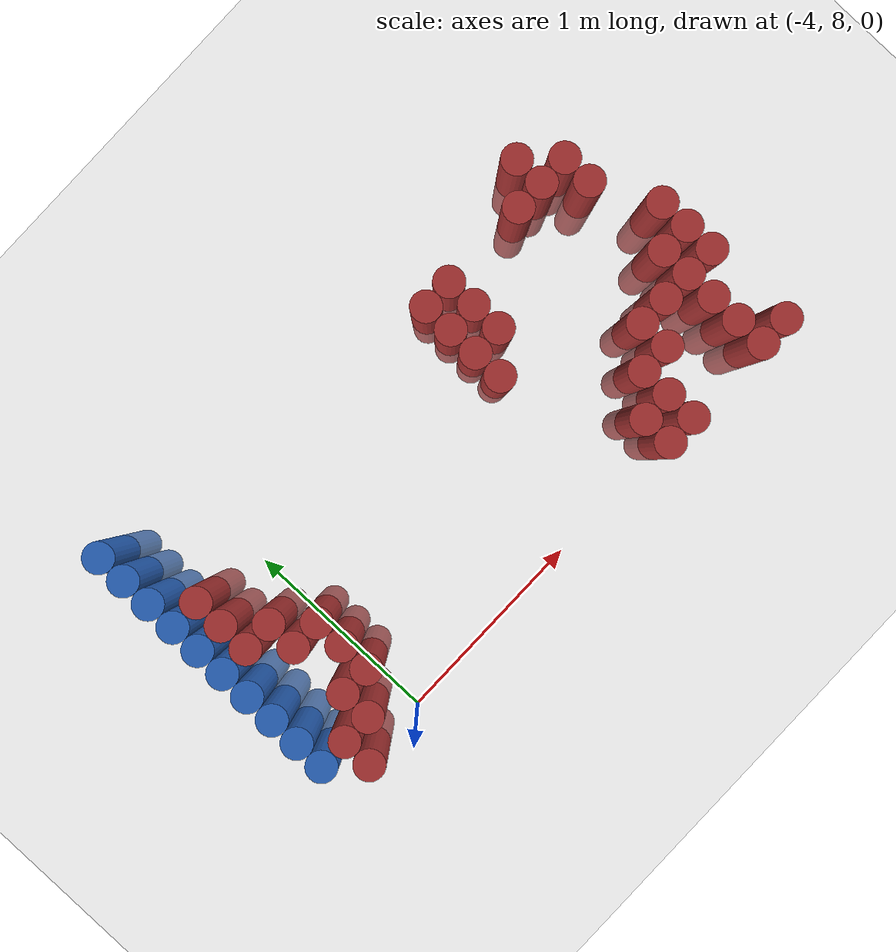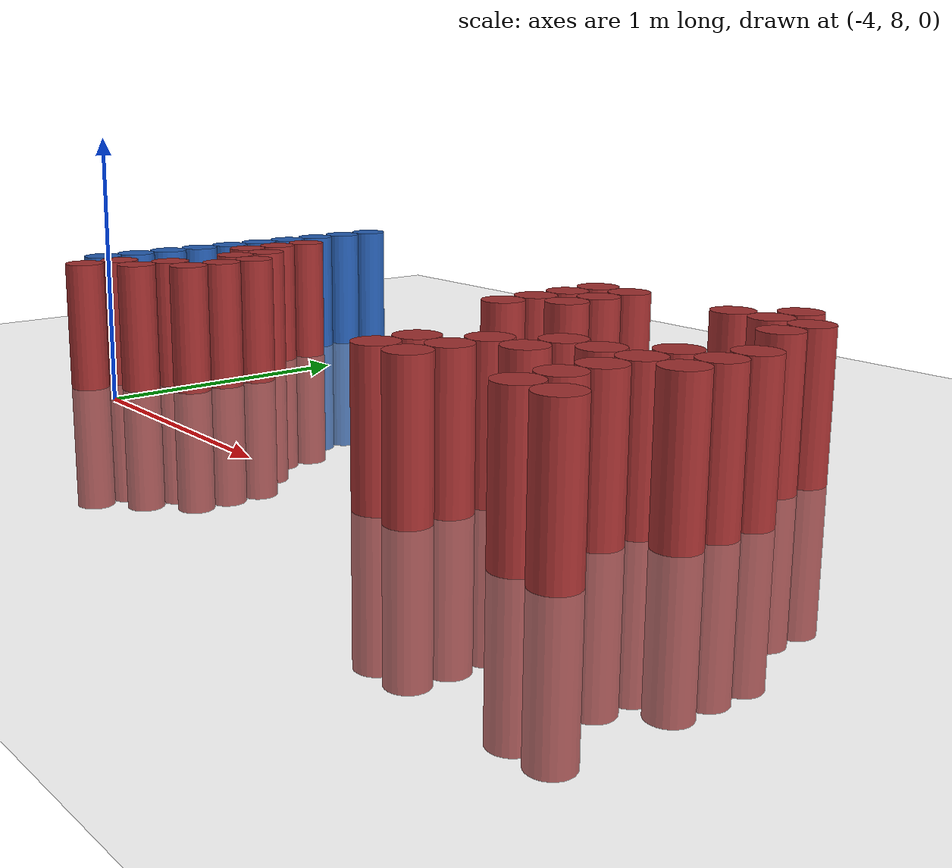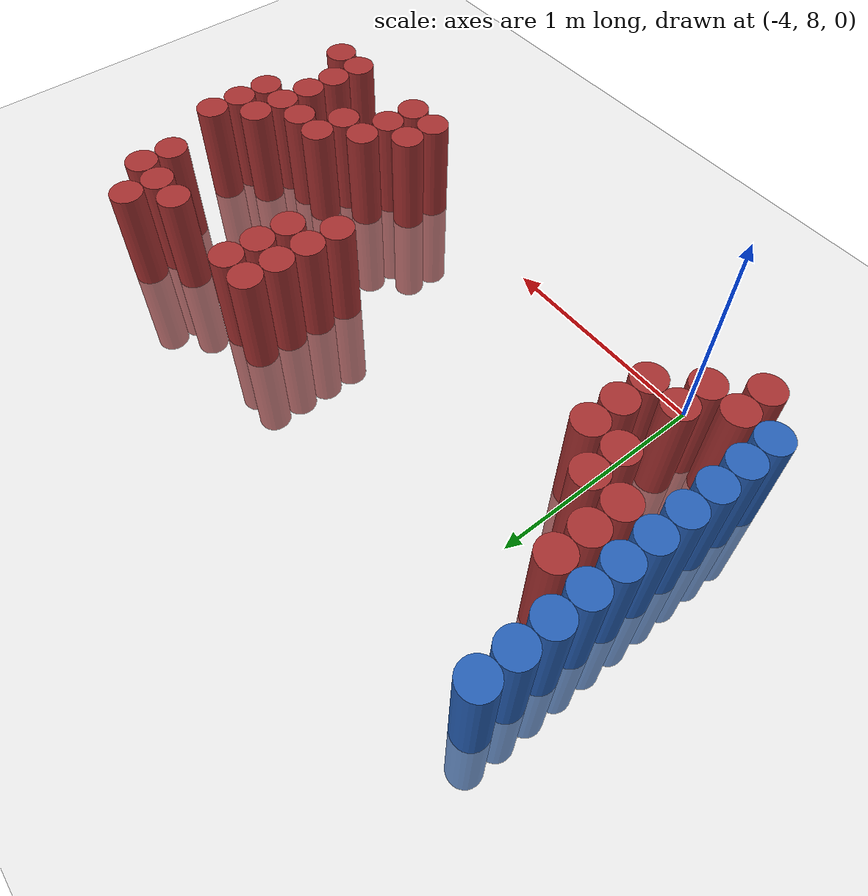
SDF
<sdf version="1.6">
 <world name="default">
  <model name="ground_plane">
   <static>1</static>
   <link name="link">
    <collision name="collision">
     <geometry><plane><normal>0 0 1</normal><size>100 100</size></plane></geometry>
     <surface><friction><ode><mu>100</mu><mu2>50</mu2></ode></friction></surface>
    </collision>
    <visual name="visual">
     <cast_shadows>0</cast_shadows>
     <geometry><plane><normal>0 0 1</normal><size>100 100</size></plane></geometry>
     <material>
      <script><uri>file://media/materials/scripts/gazebo.material</uri><name>Gazebo/Grey</name></script>
     </material>
    </visual>
   </link>
  </model>
  <model name="unit_cylinder_116">
   <static>1</static>
   <pose>-4.425000 8.175000 0.000000 0.000000 0.000000 0.000000</pose>
   <link name="link">
    <inertial>
     <mass>1</mass>
     <inertia><ixx>0.145833</ixx><ixy>0</ixy><ixz>0</ixz><iyy>0.145833</iyy><iyz>0</iyz><izz>0.125</izz></inertia>
    </inertial>
    <collision name="collision">
     <geometry><cylinder><radius>0.075000</radius><length>1</length></cylinder></geometry>
    </collision>
    <visual name="visual">
     <geometry><cylinder><radius>0.075000</radius><length>1</length></cylinder></geometry>
     <material>
      <ambient>0.152000 0.379000 0.720000 1</ambient>
      <diffuse>0.152000 0.379000 0.720000 1</diffuse>
     </material>
     <material>
      <script><name>Gazebo/Grey</name><uri>file://media/materials/scripts/gazebo.material</uri></script>
     </material>
    </visual>
   </link>
  </model>
  <model name="unit_cylinder_117">
   <static>1</static>
   <pose>-4.425000 8.325000 0.000000 0.000000 0.000000 0.000000</pose>
   <link name="link">
    <inertial>
     <mass>1</mass>
     <inertia><ixx>0.145833</ixx><ixy>0</ixy><ixz>0</ixz><iyy>0.145833</iyy><iyz>0</iyz><izz>0.125</izz></inertia>
    </inertial>
    <collision name="collision">
     <geometry><cylinder><radius>0.075000</radius><length>1</length></cylinder></geometry>
    </collision>
    <visual name="visual">
     <geometry><cylinder><radius>0.075000</radius><length>1</length></cylinder></geometry>
     <material>
      <ambient>0.152000 0.379000 0.720000 1</ambient>
      <diffuse>0.152000 0.379000 0.720000 1</diffuse>
     </material>
     <material>
      <script><name>Gazebo/Grey</name><uri>file://media/materials/scripts/gazebo.material</uri></script>
     </material>
    </visual>
   </link>
  </model>
  <model name="unit_cylinder_118">
   <static>1</static>
   <pose>-4.425000 8.475000 0.000000 0.000000 0.000000 0.000000</pose>
   <link name="link">
    <inertial>
     <mass>1</mass>
     <inertia><ixx>0.145833</ixx><ixy>0</ixy><ixz>0</ixz><iyy>0.145833</iyy><iyz>0</iyz><izz>0.125</izz></inertia>
    </inertial>
    <collision name="collision">
     <geometry><cylinder><radius>0.075000</radius><length>1</length></cylinder></geometry>
    </collision>
    <visual name="visual">
     <geometry><cylinder><radius>0.075000</radius><length>1</length></cylinder></geometry>
     <material>
      <ambient>0.152000 0.379000 0.720000 1</ambient>
      <diffuse>0.152000 0.379000 0.720000 1</diffuse>
     </material>
     <material>
      <script><name>Gazebo/Grey</name><uri>file://media/materials/scripts/gazebo.material</uri></script>
     </material>
    </visual>
   </link>
  </model>
  <model name="unit_cylinder_119">
   <static>1</static>
   <pose>-4.425000 8.625000 0.000000 0.000000 0.000000 0.000000</pose>
   <link name="link">
    <inertial>
     <mass>1</mass>
     <inertia><ixx>0.145833</ixx><ixy>0</ixy><ixz>0</ixz><iyy>0.145833</iyy><iyz>0</iyz><izz>0.125</izz></inertia>
    </inertial>
    <collision name="collision">
     <geometry><cylinder><radius>0.075000</radius><length>1</length></cylinder></geometry>
    </collision>
    <visual name="visual">
     <geometry><cylinder><radius>0.075000</radius><length>1</length></cylinder></geometry>
     <material>
      <ambient>0.152000 0.379000 0.720000 1</ambient>
      <diffuse>0.152000 0.379000 0.720000 1</diffuse>
     </material>
     <material>
      <script><name>Gazebo/Grey</name><uri>file://media/materials/scripts/gazebo.material</uri></script>
     </material>
    </visual>
   </link>
  </model>
  <model name="unit_cylinder_120">
   <static>1</static>
   <pose>-4.425000 8.775000 0.000000 0.000000 0.000000 0.000000</pose>
   <link name="link">
    <inertial>
     <mass>1</mass>
     <inertia><ixx>0.145833</ixx><ixy>0</ixy><ixz>0</ixz><iyy>0.145833</iyy><iyz>0</iyz><izz>0.125</izz></inertia>
    </inertial>
    <collision name="collision">
     <geometry><cylinder><radius>0.075000</radius><length>1</length></cylinder></geometry>
    </collision>
    <visual name="visual">
     <geometry><cylinder><radius>0.075000</radius><length>1</length></cylinder></geometry>
     <material>
      <ambient>0.152000 0.379000 0.720000 1</ambient>
      <diffuse>0.152000 0.379000 0.720000 1</diffuse>
     </material>
     <material>
      <script><name>Gazebo/Grey</name><uri>file://media/materials/scripts/gazebo.material</uri></script>
     </material>
    </visual>
   </link>
  </model>
  <model name="unit_cylinder_121">
   <static>1</static>
   <pose>-4.425000 8.925000 0.000000 0.000000 0.000000 0.000000</pose>
   <link name="link">
    <inertial>
     <mass>1</mass>
     <inertia><ixx>0.145833</ixx><ixy>0</ixy><ixz>0</ixz><iyy>0.145833</iyy><iyz>0</iyz><izz>0.125</izz></inertia>
    </inertial>
    <collision name="collision">
     <geometry><cylinder><radius>0.075000</radius><length>1</length></cylinder></geometry>
    </collision>
    <visual name="visual">
     <geometry><cylinder><radius>0.075000</radius><length>1</length></cylinder></geometry>
     <material>
      <ambient>0.152000 0.379000 0.720000 1</ambient>
      <diffuse>0.152000 0.379000 0.720000 1</diffuse>
     </material>
     <material>
      <script><name>Gazebo/Grey</name><uri>file://media/materials/scripts/gazebo.material</uri></script>
     </material>
    </visual>
   </link>
  </model>
  <model name="unit_cylinder_122">
   <static>1</static>
   <pose>-4.425000 9.075000 0.000000 0.000000 0.000000 0.000000</pose>
   <link name="link">
    <inertial>
     <mass>1</mass>
     <inertia><ixx>0.145833</ixx><ixy>0</ixy><ixz>0</ixz><iyy>0.145833</iyy><iyz>0</iyz><izz>0.125</izz></inertia>
    </inertial>
    <collision name="collision">
     <geometry><cylinder><radius>0.075000</radius><length>1</length></cylinder></geometry>
    </collision>
    <visual name="visual">
     <geometry><cylinder><radius>0.075000</radius><length>1</length></cylinder></geometry>
     <material>
      <ambient>0.152000 0.379000 0.720000 1</ambient>
      <diffuse>0.152000 0.379000 0.720000 1</diffuse>
     </material>
     <material>
      <script><name>Gazebo/Grey</name><uri>file://media/materials/scripts/gazebo.material</uri></script>
     </material>
    </visual>
   </link>
  </model>
  <model name="unit_cylinder_123">
   <static>1</static>
   <pose>-4.425000 9.225000 0.000000 0.000000 0.000000 0.000000</pose>
   <link name="link">
    <inertial>
     <mass>1</mass>
     <inertia><ixx>0.145833</ixx><ixy>0</ixy><ixz>0</ixz><iyy>0.145833</iyy><iyz>0</iyz><izz>0.125</izz></inertia>
    </inertial>
    <collision name="collision">
     <geometry><cylinder><radius>0.075000</radius><length>1</length></cylinder></geometry>
    </collision>
    <visual name="visual">
     <geometry><cylinder><radius>0.075000</radius><length>1</length></cylinder></geometry>
     <material>
      <ambient>0.152000 0.379000 0.720000 1</ambient>
      <diffuse>0.152000 0.379000 0.720000 1</diffuse>
     </material>
     <material>
      <script><name>Gazebo/Grey</name><uri>file://media/materials/scripts/gazebo.material</uri></script>
     </material>
    </visual>
   </link>
  </model>
  <model name="unit_cylinder_124">
   <static>1</static>
   <pose>-4.425000 9.375000 0.000000 0.000000 0.000000 0.000000</pose>
   <link name="link">
    <inertial>
     <mass>1</mass>
     <inertia><ixx>0.145833</ixx><ixy>0</ixy><ixz>0</ixz><iyy>0.145833</iyy><iyz>0</iyz><izz>0.125</izz></inertia>
    </inertial>
    <collision name="collision">
     <geometry><cylinder><radius>0.075000</radius><length>1</length></cylinder></geometry>
    </collision>
    <visual name="visual">
     <geometry><cylinder><radius>0.075000</radius><length>1</length></cylinder></geometry>
     <material>
      <ambient>0.152000 0.379000 0.720000 1</ambient>
      <diffuse>0.152000 0.379000 0.720000 1</diffuse>
     </material>
     <material>
      <script><name>Gazebo/Grey</name><uri>file://media/materials/scripts/gazebo.material</uri></script>
     </material>
    </visual>
   </link>
  </model>
  <model name="unit_cylinder_125">
   <static>1</static>
   <pose>-4.425000 9.525000 0.000000 0.000000 0.000000 0.000000</pose>
   <link name="link">
    <inertial>
     <mass>1</mass>
     <inertia><ixx>0.145833</ixx><ixy>0</ixy><ixz>0</ixz><iyy>0.145833</iyy><iyz>0</iyz><izz>0.125</izz></inertia>
    </inertial>
    <collision name="collision">
     <geometry><cylinder><radius>0.075000</radius><length>1</length></cylinder></geometry>
    </collision>
    <visual name="visual">
     <geometry><cylinder><radius>0.075000</radius><length>1</length></cylinder></geometry>
     <material>
      <ambient>0.152000 0.379000 0.720000 1</ambient>
      <diffuse>0.152000 0.379000 0.720000 1</diffuse>
     </material>
     <material>
      <script><name>Gazebo/Grey</name><uri>file://media/materials/scripts/gazebo.material</uri></script>
     </material>
    </visual>
   </link>
  </model>
  <model name="unit_cylinder_133">
   <static>1</static>
   <pose>-4.275000 8.025000 0.000000 0.000000 0.000000 0.000000</pose>
   <link name="link">
    <inertial>
     <mass>1</mass>
     <inertia><ixx>0.145833</ixx><ixy>0</ixy><ixz>0</ixz><iyy>0.145833</iyy><iyz>0</iyz><izz>0.125</izz></inertia>
    </inertial>
    <collision name="collision">
     <geometry><cylinder><radius>0.075000</radius><length>1</length></cylinder></geometry>
    </collision>
    <visual name="visual">
     <geometry><cylinder><radius>0.075000</radius><length>1</length></cylinder></geometry>
     <material>
      <ambient>0.648000 0.192000 0.192000 1</ambient>
      <diffuse>0.648000 0.192000 0.192000 1</diffuse>
     </material>
     <material>
      <script><name>Gazebo/Grey</name><uri>file://media/materials/scripts/gazebo.material</uri></script>
     </material>
    </visual>
   </link>
  </model>
  <model name="unit_cylinder_134">
   <static>1</static>
   <pose>-4.275000 8.175000 0.000000 0.000000 0.000000 0.000000</pose>
   <link name="link">
    <inertial>
     <mass>1</mass>
     <inertia><ixx>0.145833</ixx><ixy>0</ixy><ixz>0</ixz><iyy>0.145833</iyy><iyz>0</iyz><izz>0.125</izz></inertia>
    </inertial>
    <collision name="collision">
     <geometry><cylinder><radius>0.075000</radius><length>1</length></cylinder></geometry>
    </collision>
    <visual name="visual">
     <geometry><cylinder><radius>0.075000</radius><length>1</length></cylinder></geometry>
     <material>
      <ambient>0.648000 0.192000 0.192000 1</ambient>
      <diffuse>0.648000 0.192000 0.192000 1</diffuse>
     </material>
     <material>
      <script><name>Gazebo/Grey</name><uri>file://media/materials/scripts/gazebo.material</uri></script>
     </material>
    </visual>
   </link>
  </model>
  <model name="unit_cylinder_135">
   <static>1</static>
   <pose>-4.275000 8.775000 0.000000 0.000000 0.000000 0.000000</pose>
   <link name="link">
    <inertial>
     <mass>1</mass>
     <inertia><ixx>0.145833</ixx><ixy>0</ixy><ixz>0</ixz><iyy>0.145833</iyy><iyz>0</iyz><izz>0.125</izz></inertia>
    </inertial>
    <collision name="collision">
     <geometry><cylinder><radius>0.075000</radius><length>1</length></cylinder></geometry>
    </collision>
    <visual name="visual">
     <geometry><cylinder><radius>0.075000</radius><length>1</length></cylinder></geometry>
     <material>
      <ambient>0.648000 0.192000 0.192000 1</ambient>
      <diffuse>0.648000 0.192000 0.192000 1</diffuse>
     </material>
     <material>
      <script><name>Gazebo/Grey</name><uri>file://media/materials/scripts/gazebo.material</uri></script>
     </material>
    </visual>
   </link>
  </model>
  <model name="unit_cylinder_136">
   <static>1</static>
   <pose>-4.275000 8.925000 0.000000 0.000000 0.000000 0.000000</pose>
   <link name="link">
    <inertial>
     <mass>1</mass>
     <inertia><ixx>0.145833</ixx><ixy>0</ixy><ixz>0</ixz><iyy>0.145833</iyy><iyz>0</iyz><izz>0.125</izz></inertia>
    </inertial>
    <collision name="collision">
     <geometry><cylinder><radius>0.075000</radius><length>1</length></cylinder></geometry>
    </collision>
    <visual name="visual">
     <geometry><cylinder><radius>0.075000</radius><length>1</length></cylinder></geometry>
     <material>
      <ambient>0.648000 0.192000 0.192000 1</ambient>
      <diffuse>0.648000 0.192000 0.192000 1</diffuse>
     </material>
     <material>
      <script><name>Gazebo/Grey</name><uri>file://media/materials/scripts/gazebo.material</uri></script>
     </material>
    </visual>
   </link>
  </model>
  <model name="unit_cylinder_137">
   <static>1</static>
   <pose>-4.275000 9.075000 0.000000 0.000000 0.000000 0.000000</pose>
   <link name="link">
    <inertial>
     <mass>1</mass>
     <inertia><ixx>0.145833</ixx><ixy>0</ixy><ixz>0</ixz><iyy>0.145833</iyy><iyz>0</iyz><izz>0.125</izz></inertia>
    </inertial>
    <collision name="collision">
     <geometry><cylinder><radius>0.075000</radius><length>1</length></cylinder></geometry>
    </collision>
    <visual name="visual">
     <geometry><cylinder><radius>0.075000</radius><length>1</length></cylinder></geometry>
     <material>
      <ambient>0.648000 0.192000 0.192000 1</ambient>
      <diffuse>0.648000 0.192000 0.192000 1</diffuse>
     </material>
     <material>
      <script><name>Gazebo/Grey</name><uri>file://media/materials/scripts/gazebo.material</uri></script>
     </material>
    </visual>
   </link>
  </model>
  <model name="unit_cylinder_138">
   <static>1</static>
   <pose>-4.125000 8.175000 0.000000 0.000000 0.000000 0.000000</pose>
   <link name="link">
    <inertial>
     <mass>1</mass>
     <inertia><ixx>0.145833</ixx><ixy>0</ixy><ixz>0</ixz><iyy>0.145833</iyy><iyz>0</iyz><izz>0.125</izz></inertia>
    </inertial>
    <collision name="collision">
     <geometry><cylinder><radius>0.075000</radius><length>1</length></cylinder></geometry>
    </collision>
    <visual name="visual">
     <geometry><cylinder><radius>0.075000</radius><length>1</length></cylinder></geometry>
     <material>
      <ambient>0.648000 0.192000 0.192000 1</ambient>
      <diffuse>0.648000 0.192000 0.192000 1</diffuse>
     </material>
     <material>
      <script><name>Gazebo/Grey</name><uri>file://media/materials/scripts/gazebo.material</uri></script>
     </material>
    </visual>
   </link>
  </model>
  <model name="unit_cylinder_139">
   <static>1</static>
   <pose>-4.125000 8.325000 0.000000 0.000000 0.000000 0.000000</pose>
   <link name="link">
    <inertial>
     <mass>1</mass>
     <inertia><ixx>0.145833</ixx><ixy>0</ixy><ixz>0</ixz><iyy>0.145833</iyy><iyz>0</iyz><izz>0.125</izz></inertia>
    </inertial>
    <collision name="collision">
     <geometry><cylinder><radius>0.075000</radius><length>1</length></cylinder></geometry>
    </collision>
    <visual name="visual">
     <geometry><cylinder><radius>0.075000</radius><length>1</length></cylinder></geometry>
     <material>
      <ambient>0.648000 0.192000 0.192000 1</ambient>
      <diffuse>0.648000 0.192000 0.192000 1</diffuse>
     </material>
     <material>
      <script><name>Gazebo/Grey</name><uri>file://media/materials/scripts/gazebo.material</uri></script>
     </material>
    </visual>
   </link>
  </model>
  <model name="unit_cylinder_140">
   <static>1</static>
   <pose>-4.125000 8.625000 0.000000 0.000000 0.000000 0.000000</pose>
   <link name="link">
    <inertial>
     <mass>1</mass>
     <inertia><ixx>0.145833</ixx><ixy>0</ixy><ixz>0</ixz><iyy>0.145833</iyy><iyz>0</iyz><izz>0.125</izz></inertia>
    </inertial>
    <collision name="collision">
     <geometry><cylinder><radius>0.075000</radius><length>1</length></cylinder></geometry>
    </collision>
    <visual name="visual">
     <geometry><cylinder><radius>0.075000</radius><length>1</length></cylinder></geometry>
     <material>
      <ambient>0.648000 0.192000 0.192000 1</ambient>
      <diffuse>0.648000 0.192000 0.192000 1</diffuse>
     </material>
     <material>
      <script><name>Gazebo/Grey</name><uri>file://media/materials/scripts/gazebo.material</uri></script>
     </material>
    </visual>
   </link>
  </model>
  <model name="unit_cylinder_141">
   <static>1</static>
   <pose>-4.125000 8.775000 0.000000 0.000000 0.000000 0.000000</pose>
   <link name="link">
    <inertial>
     <mass>1</mass>
     <inertia><ixx>0.145833</ixx><ixy>0</ixy><ixz>0</ixz><iyy>0.145833</iyy><iyz>0</iyz><izz>0.125</izz></inertia>
    </inertial>
    <collision name="collision">
     <geometry><cylinder><radius>0.075000</radius><length>1</length></cylinder></geometry>
    </collision>
    <visual name="visual">
     <geometry><cylinder><radius>0.075000</radius><length>1</length></cylinder></geometry>
     <material>
      <ambient>0.648000 0.192000 0.192000 1</ambient>
      <diffuse>0.648000 0.192000 0.192000 1</diffuse>
     </material>
     <material>
      <script><name>Gazebo/Grey</name><uri>file://media/materials/scripts/gazebo.material</uri></script>
     </material>
    </visual>
   </link>
  </model>
  <model name="unit_cylinder_142">
   <static>1</static>
   <pose>-3.975000 8.325000 0.000000 0.000000 0.000000 0.000000</pose>
   <link name="link">
    <inertial>
     <mass>1</mass>
     <inertia><ixx>0.145833</ixx><ixy>0</ixy><ixz>0</ixz><iyy>0.145833</iyy><iyz>0</iyz><izz>0.125</izz></inertia>
    </inertial>
    <collision name="collision">
     <geometry><cylinder><radius>0.075000</radius><length>1</length></cylinder></geometry>
    </collision>
    <visual name="visual">
     <geometry><cylinder><radius>0.075000</radius><length>1</length></cylinder></geometry>
     <material>
      <ambient>0.648000 0.192000 0.192000 1</ambient>
      <diffuse>0.648000 0.192000 0.192000 1</diffuse>
     </material>
     <material>
      <script><name>Gazebo/Grey</name><uri>file://media/materials/scripts/gazebo.material</uri></script>
     </material>
    </visual>
   </link>
  </model>
  <model name="unit_cylinder_143">
   <static>1</static>
   <pose>-3.975000 8.475000 0.000000 0.000000 0.000000 0.000000</pose>
   <link name="link">
    <inertial>
     <mass>1</mass>
     <inertia><ixx>0.145833</ixx><ixy>0</ixy><ixz>0</ixz><iyy>0.145833</iyy><iyz>0</iyz><izz>0.125</izz></inertia>
    </inertial>
    <collision name="collision">
     <geometry><cylinder><radius>0.075000</radius><length>1</length></cylinder></geometry>
    </collision>
    <visual name="visual">
     <geometry><cylinder><radius>0.075000</radius><length>1</length></cylinder></geometry>
     <material>
      <ambient>0.648000 0.192000 0.192000 1</ambient>
      <diffuse>0.648000 0.192000 0.192000 1</diffuse>
     </material>
     <material>
      <script><name>Gazebo/Grey</name><uri>file://media/materials/scripts/gazebo.material</uri></script>
     </material>
    </visual>
   </link>
  </model>
  <model name="unit_cylinder_144">
   <static>1</static>
   <pose>-3.975000 8.625000 0.000000 0.000000 0.000000 0.000000</pose>
   <link name="link">
    <inertial>
     <mass>1</mass>
     <inertia><ixx>0.145833</ixx><ixy>0</ixy><ixz>0</ixz><iyy>0.145833</iyy><iyz>0</iyz><izz>0.125</izz></inertia>
    </inertial>
    <collision name="collision">
     <geometry><cylinder><radius>0.075000</radius><length>1</length></cylinder></geometry>
    </collision>
    <visual name="visual">
     <geometry><cylinder><radius>0.075000</radius><length>1</length></cylinder></geometry>
     <material>
      <ambient>0.648000 0.192000 0.192000 1</ambient>
      <diffuse>0.648000 0.192000 0.192000 1</diffuse>
     </material>
     <material>
      <script><name>Gazebo/Grey</name><uri>file://media/materials/scripts/gazebo.material</uri></script>
     </material>
    </visual>
   </link>
  </model>
  <model name="unit_cylinder_164">
   <static>1</static>
   <pose>-2.625000 8.775000 0.000000 0.000000 0.000000 0.000000</pose>
   <link name="link">
    <inertial>
     <mass>1</mass>
     <inertia><ixx>0.145833</ixx><ixy>0</ixy><ixz>0</ixz><iyy>0.145833</iyy><iyz>0</iyz><izz>0.125</izz></inertia>
    </inertial>
    <collision name="collision">
     <geometry><cylinder><radius>0.075000</radius><length>1</length></cylinder></geometry>
    </collision>
    <visual name="visual">
     <geometry><cylinder><radius>0.075000</radius><length>1</length></cylinder></geometry>
     <material>
      <ambient>0.648000 0.192000 0.192000 1</ambient>
      <diffuse>0.648000 0.192000 0.192000 1</diffuse>
     </material>
     <material>
      <script><name>Gazebo/Grey</name><uri>file://media/materials/scripts/gazebo.material</uri></script>
     </material>
    </visual>
   </link>
  </model>
  <model name="unit_cylinder_165">
   <static>1</static>
   <pose>-2.625000 8.925000 0.000000 0.000000 0.000000 0.000000</pose>
   <link name="link">
    <inertial>
     <mass>1</mass>
     <inertia><ixx>0.145833</ixx><ixy>0</ixy><ixz>0</ixz><iyy>0.145833</iyy><iyz>0</iyz><izz>0.125</izz></inertia>
    </inertial>
    <collision name="collision">
     <geometry><cylinder><radius>0.075000</radius><length>1</length></cylinder></geometry>
    </collision>
    <visual name="visual">
     <geometry><cylinder><radius>0.075000</radius><length>1</length></cylinder></geometry>
     <material>
      <ambient>0.648000 0.192000 0.192000 1</ambient>
      <diffuse>0.648000 0.192000 0.192000 1</diffuse>
     </material>
     <material>
      <script><name>Gazebo/Grey</name><uri>file://media/materials/scripts/gazebo.material</uri></script>
     </material>
    </visual>
   </link>
  </model>
  <model name="unit_cylinder_166">
   <static>1</static>
   <pose>-2.625000 9.075000 0.000000 0.000000 0.000000 0.000000</pose>
   <link name="link">
    <inertial>
     <mass>1</mass>
     <inertia><ixx>0.145833</ixx><ixy>0</ixy><ixz>0</ixz><iyy>0.145833</iyy><iyz>0</iyz><izz>0.125</izz></inertia>
    </inertial>
    <collision name="collision">
     <geometry><cylinder><radius>0.075000</radius><length>1</length></cylinder></geometry>
    </collision>
    <visual name="visual">
     <geometry><cylinder><radius>0.075000</radius><length>1</length></cylinder></geometry>
     <material>
      <ambient>0.648000 0.192000 0.192000 1</ambient>
      <diffuse>0.648000 0.192000 0.192000 1</diffuse>
     </material>
     <material>
      <script><name>Gazebo/Grey</name><uri>file://media/materials/scripts/gazebo.material</uri></script>
     </material>
    </visual>
   </link>
  </model>
  <model name="unit_cylinder_167">
   <static>1</static>
   <pose>-2.625000 9.225000 0.000000 0.000000 0.000000 0.000000</pose>
   <link name="link">
    <inertial>
     <mass>1</mass>
     <inertia><ixx>0.145833</ixx><ixy>0</ixy><ixz>0</ixz><iyy>0.145833</iyy><iyz>0</iyz><izz>0.125</izz></inertia>
    </inertial>
    <collision name="collision">
     <geometry><cylinder><radius>0.075000</radius><length>1</length></cylinder></geometry>
    </collision>
    <visual name="visual">
     <geometry><cylinder><radius>0.075000</radius><length>1</length></cylinder></geometry>
     <material>
      <ambient>0.648000 0.192000 0.192000 1</ambient>
      <diffuse>0.648000 0.192000 0.192000 1</diffuse>
     </material>
     <material>
      <script><name>Gazebo/Grey</name><uri>file://media/materials/scripts/gazebo.material</uri></script>
     </material>
    </visual>
   </link>
  </model>
  <model name="unit_cylinder_173">
   <static>1</static>
   <pose>-2.475000 8.925000 0.000000 0.000000 0.000000 0.000000</pose>
   <link name="link">
    <inertial>
     <mass>1</mass>
     <inertia><ixx>0.145833</ixx><ixy>0</ixy><ixz>0</ixz><iyy>0.145833</iyy><iyz>0</iyz><izz>0.125</izz></inertia>
    </inertial>
    <collision name="collision">
     <geometry><cylinder><radius>0.075000</radius><length>1</length></cylinder></geometry>
    </collision>
    <visual name="visual">
     <geometry><cylinder><radius>0.075000</radius><length>1</length></cylinder></geometry>
     <material>
      <ambient>0.648000 0.192000 0.192000 1</ambient>
      <diffuse>0.648000 0.192000 0.192000 1</diffuse>
     </material>
     <material>
      <script><name>Gazebo/Grey</name><uri>file://media/materials/scripts/gazebo.material</uri></script>
     </material>
    </visual>
   </link>
  </model>
  <model name="unit_cylinder_174">
   <static>1</static>
   <pose>-2.475000 9.075000 0.000000 0.000000 0.000000 0.000000</pose>
   <link name="link">
    <inertial>
     <mass>1</mass>
     <inertia><ixx>0.145833</ixx><ixy>0</ixy><ixz>0</ixz><iyy>0.145833</iyy><iyz>0</iyz><izz>0.125</izz></inertia>
    </inertial>
    <collision name="collision">
     <geometry><cylinder><radius>0.075000</radius><length>1</length></cylinder></geometry>
    </collision>
    <visual name="visual">
     <geometry><cylinder><radius>0.075000</radius><length>1</length></cylinder></geometry>
     <material>
      <ambient>0.648000 0.192000 0.192000 1</ambient>
      <diffuse>0.648000 0.192000 0.192000 1</diffuse>
     </material>
     <material>
      <script><name>Gazebo/Grey</name><uri>file://media/materials/scripts/gazebo.material</uri></script>
     </material>
    </visual>
   </link>
  </model>
  <model name="unit_cylinder_175">
   <static>1</static>
   <pose>-2.475000 9.225000 0.000000 0.000000 0.000000 0.000000</pose>
   <link name="link">
    <inertial>
     <mass>1</mass>
     <inertia><ixx>0.145833</ixx><ixy>0</ixy><ixz>0</ixz><iyy>0.145833</iyy><iyz>0</iyz><izz>0.125</izz></inertia>
    </inertial>
    <collision name="collision">
     <geometry><cylinder><radius>0.075000</radius><length>1</length></cylinder></geometry>
    </collision>
    <visual name="visual">
     <geometry><cylinder><radius>0.075000</radius><length>1</length></cylinder></geometry>
     <material>
      <ambient>0.648000 0.192000 0.192000 1</ambient>
      <diffuse>0.648000 0.192000 0.192000 1</diffuse>
     </material>
     <material>
      <script><name>Gazebo/Grey</name><uri>file://media/materials/scripts/gazebo.material</uri></script>
     </material>
    </visual>
   </link>
  </model>
  <model name="unit_cylinder_184">
   <static>1</static>
   <pose>-2.325000 8.025000 0.000000 0.000000 0.000000 0.000000</pose>
   <link name="link">
    <inertial>
     <mass>1</mass>
     <inertia><ixx>0.145833</ixx><ixy>0</ixy><ixz>0</ixz><iyy>0.145833</iyy><iyz>0</iyz><izz>0.125</izz></inertia>
    </inertial>
    <collision name="collision">
     <geometry><cylinder><radius>0.075000</radius><length>1</length></cylinder></geometry>
    </collision>
    <visual name="visual">
     <geometry><cylinder><radius>0.075000</radius><length>1</length></cylinder></geometry>
     <material>
      <ambient>0.648000 0.192000 0.192000 1</ambient>
      <diffuse>0.648000 0.192000 0.192000 1</diffuse>
     </material>
     <material>
      <script><name>Gazebo/Grey</name><uri>file://media/materials/scripts/gazebo.material</uri></script>
     </material>
    </visual>
   </link>
  </model>
  <model name="unit_cylinder_185">
   <static>1</static>
   <pose>-2.325000 8.175000 0.000000 0.000000 0.000000 0.000000</pose>
   <link name="link">
    <inertial>
     <mass>1</mass>
     <inertia><ixx>0.145833</ixx><ixy>0</ixy><ixz>0</ixz><iyy>0.145833</iyy><iyz>0</iyz><izz>0.125</izz></inertia>
    </inertial>
    <collision name="collision">
     <geometry><cylinder><radius>0.075000</radius><length>1</length></cylinder></geometry>
    </collision>
    <visual name="visual">
     <geometry><cylinder><radius>0.075000</radius><length>1</length></cylinder></geometry>
     <material>
      <ambient>0.648000 0.192000 0.192000 1</ambient>
      <diffuse>0.648000 0.192000 0.192000 1</diffuse>
     </material>
     <material>
      <script><name>Gazebo/Grey</name><uri>file://media/materials/scripts/gazebo.material</uri></script>
     </material>
    </visual>
   </link>
  </model>
  <model name="unit_cylinder_192">
   <static>1</static>
   <pose>-2.175000 8.025000 0.000000 0.000000 0.000000 0.000000</pose>
   <link name="link">
    <inertial>
     <mass>1</mass>
     <inertia><ixx>0.145833</ixx><ixy>0</ixy><ixz>0</ixz><iyy>0.145833</iyy><iyz>0</iyz><izz>0.125</izz></inertia>
    </inertial>
    <collision name="collision">
     <geometry><cylinder><radius>0.075000</radius><length>1</length></cylinder></geometry>
    </collision>
    <visual name="visual">
     <geometry><cylinder><radius>0.075000</radius><length>1</length></cylinder></geometry>
     <material>
      <ambient>0.648000 0.192000 0.192000 1</ambient>
      <diffuse>0.648000 0.192000 0.192000 1</diffuse>
     </material>
     <material>
      <script><name>Gazebo/Grey</name><uri>file://media/materials/scripts/gazebo.material</uri></script>
     </material>
    </visual>
   </link>
  </model>
  <model name="unit_cylinder_193">
   <static>1</static>
   <pose>-2.175000 8.175000 0.000000 0.000000 0.000000 0.000000</pose>
   <link name="link">
    <inertial>
     <mass>1</mass>
     <inertia><ixx>0.145833</ixx><ixy>0</ixy><ixz>0</ixz><iyy>0.145833</iyy><iyz>0</iyz><izz>0.125</izz></inertia>
    </inertial>
    <collision name="collision">
     <geometry><cylinder><radius>0.075000</radius><length>1</length></cylinder></geometry>
    </collision>
    <visual name="visual">
     <geometry><cylinder><radius>0.075000</radius><length>1</length></cylinder></geometry>
     <material>
      <ambient>0.648000 0.192000 0.192000 1</ambient>
      <diffuse>0.648000 0.192000 0.192000 1</diffuse>
     </material>
     <material>
      <script><name>Gazebo/Grey</name><uri>file://media/materials/scripts/gazebo.material</uri></script>
     </material>
    </visual>
   </link>
  </model>
  <model name="unit_cylinder_194">
   <static>1</static>
   <pose>-2.175000 8.325000 0.000000 0.000000 0.000000 0.000000</pose>
   <link name="link">
    <inertial>
     <mass>1</mass>
     <inertia><ixx>0.145833</ixx><ixy>0</ixy><ixz>0</ixz><iyy>0.145833</iyy><iyz>0</iyz><izz>0.125</izz></inertia>
    </inertial>
    <collision name="collision">
     <geometry><cylinder><radius>0.075000</radius><length>1</length></cylinder></geometry>
    </collision>
    <visual name="visual">
     <geometry><cylinder><radius>0.075000</radius><length>1</length></cylinder></geometry>
     <material>
      <ambient>0.648000 0.192000 0.192000 1</ambient>
      <diffuse>0.648000 0.192000 0.192000 1</diffuse>
     </material>
     <material>
      <script><name>Gazebo/Grey</name><uri>file://media/materials/scripts/gazebo.material</uri></script>
     </material>
    </visual>
   </link>
  </model>
  <model name="unit_cylinder_202">
   <static>1</static>
   <pose>-2.025000 8.325000 0.000000 0.000000 0.000000 0.000000</pose>
   <link name="link">
    <inertial>
     <mass>1</mass>
     <inertia><ixx>0.145833</ixx><ixy>0</ixy><ixz>0</ixz><iyy>0.145833</iyy><iyz>0</iyz><izz>0.125</izz></inertia>
    </inertial>
    <collision name="collision">
     <geometry><cylinder><radius>0.075000</radius><length>1</length></cylinder></geometry>
    </collision>
    <visual name="visual">
     <geometry><cylinder><radius>0.075000</radius><length>1</length></cylinder></geometry>
     <material>
      <ambient>0.648000 0.192000 0.192000 1</ambient>
      <diffuse>0.648000 0.192000 0.192000 1</diffuse>
     </material>
     <material>
      <script><name>Gazebo/Grey</name><uri>file://media/materials/scripts/gazebo.material</uri></script>
     </material>
    </visual>
   </link>
  </model>
  <model name="unit_cylinder_203">
   <static>1</static>
   <pose>-2.025000 8.475000 0.000000 0.000000 0.000000 0.000000</pose>
   <link name="link">
    <inertial>
     <mass>1</mass>
     <inertia><ixx>0.145833</ixx><ixy>0</ixy><ixz>0</ixz><iyy>0.145833</iyy><iyz>0</iyz><izz>0.125</izz></inertia>
    </inertial>
    <collision name="collision">
     <geometry><cylinder><radius>0.075000</radius><length>1</length></cylinder></geometry>
    </collision>
    <visual name="visual">
     <geometry><cylinder><radius>0.075000</radius><length>1</length></cylinder></geometry>
     <material>
      <ambient>0.648000 0.192000 0.192000 1</ambient>
      <diffuse>0.648000 0.192000 0.192000 1</diffuse>
     </material>
     <material>
      <script><name>Gazebo/Grey</name><uri>file://media/materials/scripts/gazebo.material</uri></script>
     </material>
    </visual>
   </link>
  </model>
  <model name="unit_cylinder_204">
   <static>1</static>
   <pose>-2.025000 9.225000 0.000000 0.000000 0.000000 0.000000</pose>
   <link name="link">
    <inertial>
     <mass>1</mass>
     <inertia><ixx>0.145833</ixx><ixy>0</ixy><ixz>0</ixz><iyy>0.145833</iyy><iyz>0</iyz><izz>0.125</izz></inertia>
    </inertial>
    <collision name="collision">
     <geometry><cylinder><radius>0.075000</radius><length>1</length></cylinder></geometry>
    </collision>
    <visual name="visual">
     <geometry><cylinder><radius>0.075000</radius><length>1</length></cylinder></geometry>
     <material>
      <ambient>0.648000 0.192000 0.192000 1</ambient>
      <diffuse>0.648000 0.192000 0.192000 1</diffuse>
     </material>
     <material>
      <script><name>Gazebo/Grey</name><uri>file://media/materials/scripts/gazebo.material</uri></script>
     </material>
    </visual>
   </link>
  </model>
  <model name="unit_cylinder_210">
   <static>1</static>
   <pose>-1.875000 8.475000 0.000000 0.000000 0.000000 0.000000</pose>
   <link name="link">
    <inertial>
     <mass>1</mass>
     <inertia><ixx>0.145833</ixx><ixy>0</ixy><ixz>0</ixz><iyy>0.145833</iyy><iyz>0</iyz><izz>0.125</izz></inertia>
    </inertial>
    <collision name="collision">
     <geometry><cylinder><radius>0.075000</radius><length>1</length></cylinder></geometry>
    </collision>
    <visual name="visual">
     <geometry><cylinder><radius>0.075000</radius><length>1</length></cylinder></geometry>
     <material>
      <ambient>0.648000 0.192000 0.192000 1</ambient>
      <diffuse>0.648000 0.192000 0.192000 1</diffuse>
     </material>
     <material>
      <script><name>Gazebo/Grey</name><uri>file://media/materials/scripts/gazebo.material</uri></script>
     </material>
    </visual>
   </link>
  </model>
  <model name="unit_cylinder_211">
   <static>1</static>
   <pose>-1.875000 9.225000 0.000000 0.000000 0.000000 0.000000</pose>
   <link name="link">
    <inertial>
     <mass>1</mass>
     <inertia><ixx>0.145833</ixx><ixy>0</ixy><ixz>0</ixz><iyy>0.145833</iyy><iyz>0</iyz><izz>0.125</izz></inertia>
    </inertial>
    <collision name="collision">
     <geometry><cylinder><radius>0.075000</radius><length>1</length></cylinder></geometry>
    </collision>
    <visual name="visual">
     <geometry><cylinder><radius>0.075000</radius><length>1</length></cylinder></geometry>
     <material>
      <ambient>0.648000 0.192000 0.192000 1</ambient>
      <diffuse>0.648000 0.192000 0.192000 1</diffuse>
     </material>
     <material>
      <script><name>Gazebo/Grey</name><uri>file://media/materials/scripts/gazebo.material</uri></script>
     </material>
    </visual>
   </link>
  </model>
  <model name="unit_cylinder_212">
   <static>1</static>
   <pose>-1.875000 9.375000 0.000000 0.000000 0.000000 0.000000</pose>
   <link name="link">
    <inertial>
     <mass>1</mass>
     <inertia><ixx>0.145833</ixx><ixy>0</ixy><ixz>0</ixz><iyy>0.145833</iyy><iyz>0</iyz><izz>0.125</izz></inertia>
    </inertial>
    <collision name="collision">
     <geometry><cylinder><radius>0.075000</radius><length>1</length></cylinder></geometry>
    </collision>
    <visual name="visual">
     <geometry><cylinder><radius>0.075000</radius><length>1</length></cylinder></geometry>
     <material>
      <ambient>0.648000 0.192000 0.192000 1</ambient>
      <diffuse>0.648000 0.192000 0.192000 1</diffuse>
     </material>
     <material>
      <script><name>Gazebo/Grey</name><uri>file://media/materials/scripts/gazebo.material</uri></script>
     </material>
    </visual>
   </link>
  </model>
  <model name="unit_cylinder_217">
   <static>1</static>
   <pose>-1.725000 8.025000 0.000000 0.000000 0.000000 0.000000</pose>
   <link name="link">
    <inertial>
     <mass>1</mass>
     <inertia><ixx>0.145833</ixx><ixy>0</ixy><ixz>0</ixz><iyy>0.145833</iyy><iyz>0</iyz><izz>0.125</izz></inertia>
    </inertial>
    <collision name="collision">
     <geometry><cylinder><radius>0.075000</radius><length>1</length></cylinder></geometry>
    </collision>
    <visual name="visual">
     <geometry><cylinder><radius>0.075000</radius><length>1</length></cylinder></geometry>
     <material>
      <ambient>0.648000 0.192000 0.192000 1</ambient>
      <diffuse>0.648000 0.192000 0.192000 1</diffuse>
     </material>
     <material>
      <script><name>Gazebo/Grey</name><uri>file://media/materials/scripts/gazebo.material</uri></script>
     </material>
    </visual>
   </link>
  </model>
  <model name="unit_cylinder_218">
   <static>1</static>
   <pose>-1.725000 8.175000 0.000000 0.000000 0.000000 0.000000</pose>
   <link name="link">
    <inertial>
     <mass>1</mass>
     <inertia><ixx>0.145833</ixx><ixy>0</ixy><ixz>0</ixz><iyy>0.145833</iyy><iyz>0</iyz><izz>0.125</izz></inertia>
    </inertial>
    <collision name="collision">
     <geometry><cylinder><radius>0.075000</radius><length>1</length></cylinder></geometry>
    </collision>
    <visual name="visual">
     <geometry><cylinder><radius>0.075000</radius><length>1</length></cylinder></geometry>
     <material>
      <ambient>0.648000 0.192000 0.192000 1</ambient>
      <diffuse>0.648000 0.192000 0.192000 1</diffuse>
     </material>
     <material>
      <script><name>Gazebo/Grey</name><uri>file://media/materials/scripts/gazebo.material</uri></script>
     </material>
    </visual>
   </link>
  </model>
  <model name="unit_cylinder_219">
   <static>1</static>
   <pose>-1.725000 8.325000 0.000000 0.000000 0.000000 0.000000</pose>
   <link name="link">
    <inertial>
     <mass>1</mass>
     <inertia><ixx>0.145833</ixx><ixy>0</ixy><ixz>0</ixz><iyy>0.145833</iyy><iyz>0</iyz><izz>0.125</izz></inertia>
    </inertial>
    <collision name="collision">
     <geometry><cylinder><radius>0.075000</radius><length>1</length></cylinder></geometry>
    </collision>
    <visual name="visual">
     <geometry><cylinder><radius>0.075000</radius><length>1</length></cylinder></geometry>
     <material>
      <ambient>0.648000 0.192000 0.192000 1</ambient>
      <diffuse>0.648000 0.192000 0.192000 1</diffuse>
     </material>
     <material>
      <script><name>Gazebo/Grey</name><uri>file://media/materials/scripts/gazebo.material</uri></script>
     </material>
    </visual>
   </link>
  </model>
  <model name="unit_cylinder_220">
   <static>1</static>
   <pose>-1.725000 8.475000 0.000000 0.000000 0.000000 0.000000</pose>
   <link name="link">
    <inertial>
     <mass>1</mass>
     <inertia><ixx>0.145833</ixx><ixy>0</ixy><ixz>0</ixz><iyy>0.145833</iyy><iyz>0</iyz><izz>0.125</izz></inertia>
    </inertial>
    <collision name="collision">
     <geometry><cylinder><radius>0.075000</radius><length>1</length></cylinder></geometry>
    </collision>
    <visual name="visual">
     <geometry><cylinder><radius>0.075000</radius><length>1</length></cylinder></geometry>
     <material>
      <ambient>0.648000 0.192000 0.192000 1</ambient>
      <diffuse>0.648000 0.192000 0.192000 1</diffuse>
     </material>
     <material>
      <script><name>Gazebo/Grey</name><uri>file://media/materials/scripts/gazebo.material</uri></script>
     </material>
    </visual>
   </link>
  </model>
  <model name="unit_cylinder_221">
   <static>1</static>
   <pose>-1.725000 8.625000 0.000000 0.000000 0.000000 0.000000</pose>
   <link name="link">
    <inertial>
     <mass>1</mass>
     <inertia><ixx>0.145833</ixx><ixy>0</ixy><ixz>0</ixz><iyy>0.145833</iyy><iyz>0</iyz><izz>0.125</izz></inertia>
    </inertial>
    <collision name="collision">
     <geometry><cylinder><radius>0.075000</radius><length>1</length></cylinder></geometry>
    </collision>
    <visual name="visual">
     <geometry><cylinder><radius>0.075000</radius><length>1</length></cylinder></geometry>
     <material>
      <ambient>0.648000 0.192000 0.192000 1</ambient>
      <diffuse>0.648000 0.192000 0.192000 1</diffuse>
     </material>
     <material>
      <script><name>Gazebo/Grey</name><uri>file://media/materials/scripts/gazebo.material</uri></script>
     </material>
    </visual>
   </link>
  </model>
  <model name="unit_cylinder_222">
   <static>1</static>
   <pose>-1.725000 9.075000 0.000000 0.000000 0.000000 0.000000</pose>
   <link name="link">
    <inertial>
     <mass>1</mass>
     <inertia><ixx>0.145833</ixx><ixy>0</ixy><ixz>0</ixz><iyy>0.145833</iyy><iyz>0</iyz><izz>0.125</izz></inertia>
    </inertial>
    <collision name="collision">
     <geometry><cylinder><radius>0.075000</radius><length>1</length></cylinder></geometry>
    </collision>
    <visual name="visual">
     <geometry><cylinder><radius>0.075000</radius><length>1</length></cylinder></geometry>
     <material>
      <ambient>0.648000 0.192000 0.192000 1</ambient>
      <diffuse>0.648000 0.192000 0.192000 1</diffuse>
     </material>
     <material>
      <script><name>Gazebo/Grey</name><uri>file://media/materials/scripts/gazebo.material</uri></script>
     </material>
    </visual>
   </link>
  </model>
  <model name="unit_cylinder_223">
   <static>1</static>
   <pose>-1.725000 9.225000 0.000000 0.000000 0.000000 0.000000</pose>
   <link name="link">
    <inertial>
     <mass>1</mass>
     <inertia><ixx>0.145833</ixx><ixy>0</ixy><ixz>0</ixz><iyy>0.145833</iyy><iyz>0</iyz><izz>0.125</izz></inertia>
    </inertial>
    <collision name="collision">
     <geometry><cylinder><radius>0.075000</radius><length>1</length></cylinder></geometry>
    </collision>
    <visual name="visual">
     <geometry><cylinder><radius>0.075000</radius><length>1</length></cylinder></geometry>
     <material>
      <ambient>0.648000 0.192000 0.192000 1</ambient>
      <diffuse>0.648000 0.192000 0.192000 1</diffuse>
     </material>
     <material>
      <script><name>Gazebo/Grey</name><uri>file://media/materials/scripts/gazebo.material</uri></script>
     </material>
    </visual>
   </link>
  </model>
  <model name="unit_cylinder_227">
   <static>1</static>
   <pose>-1.575000 8.025000 0.000000 0.000000 0.000000 0.000000</pose>
   <link name="link">
    <inertial>
     <mass>1</mass>
     <inertia><ixx>0.145833</ixx><ixy>0</ixy><ixz>0</ixz><iyy>0.145833</iyy><iyz>0</iyz><izz>0.125</izz></inertia>
    </inertial>
    <collision name="collision">
     <geometry><cylinder><radius>0.075000</radius><length>1</length></cylinder></geometry>
    </collision>
    <visual name="visual">
     <geometry><cylinder><radius>0.075000</radius><length>1</length></cylinder></geometry>
     <material>
      <ambient>0.648000 0.192000 0.192000 1</ambient>
      <diffuse>0.648000 0.192000 0.192000 1</diffuse>
     </material>
     <material>
      <script><name>Gazebo/Grey</name><uri>file://media/materials/scripts/gazebo.material</uri></script>
     </material>
    </visual>
   </link>
  </model>
  <model name="unit_cylinder_228">
   <static>1</static>
   <pose>-1.575000 8.475000 0.000000 0.000000 0.000000 0.000000</pose>
   <link name="link">
    <inertial>
     <mass>1</mass>
     <inertia><ixx>0.145833</ixx><ixy>0</ixy><ixz>0</ixz><iyy>0.145833</iyy><iyz>0</iyz><izz>0.125</izz></inertia>
    </inertial>
    <collision name="collision">
     <geometry><cylinder><radius>0.075000</radius><length>1</length></cylinder></geometry>
    </collision>
    <visual name="visual">
     <geometry><cylinder><radius>0.075000</radius><length>1</length></cylinder></geometry>
     <material>
      <ambient>0.648000 0.192000 0.192000 1</ambient>
      <diffuse>0.648000 0.192000 0.192000 1</diffuse>
     </material>
     <material>
      <script><name>Gazebo/Grey</name><uri>file://media/materials/scripts/gazebo.material</uri></script>
     </material>
    </visual>
   </link>
  </model>
  <model name="unit_cylinder_229">
   <static>1</static>
   <pose>-1.575000 8.625000 0.000000 0.000000 0.000000 0.000000</pose>
   <link name="link">
    <inertial>
     <mass>1</mass>
     <inertia><ixx>0.145833</ixx><ixy>0</ixy><ixz>0</ixz><iyy>0.145833</iyy><iyz>0</iyz><izz>0.125</izz></inertia>
    </inertial>
    <collision name="collision">
     <geometry><cylinder><radius>0.075000</radius><length>1</length></cylinder></geometry>
    </collision>
    <visual name="visual">
     <geometry><cylinder><radius>0.075000</radius><length>1</length></cylinder></geometry>
     <material>
      <ambient>0.648000 0.192000 0.192000 1</ambient>
      <diffuse>0.648000 0.192000 0.192000 1</diffuse>
     </material>
     <material>
      <script><name>Gazebo/Grey</name><uri>file://media/materials/scripts/gazebo.material</uri></script>
     </material>
    </visual>
   </link>
  </model>
  <model name="unit_cylinder_230">
   <static>1</static>
   <pose>-1.575000 8.775000 0.000000 0.000000 0.000000 0.000000</pose>
   <link name="link">
    <inertial>
     <mass>1</mass>
     <inertia><ixx>0.145833</ixx><ixy>0</ixy><ixz>0</ixz><iyy>0.145833</iyy><iyz>0</iyz><izz>0.125</izz></inertia>
    </inertial>
    <collision name="collision">
     <geometry><cylinder><radius>0.075000</radius><length>1</length></cylinder></geometry>
    </collision>
    <visual name="visual">
     <geometry><cylinder><radius>0.075000</radius><length>1</length></cylinder></geometry>
     <material>
      <ambient>0.648000 0.192000 0.192000 1</ambient>
      <diffuse>0.648000 0.192000 0.192000 1</diffuse>
     </material>
     <material>
      <script><name>Gazebo/Grey</name><uri>file://media/materials/scripts/gazebo.material</uri></script>
     </material>
    </visual>
   </link>
  </model>
 </world>
</sdf>
